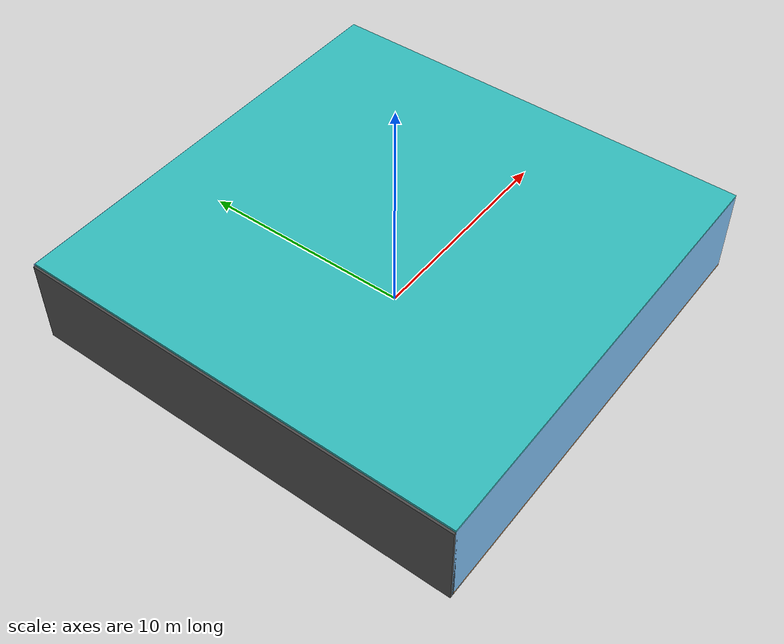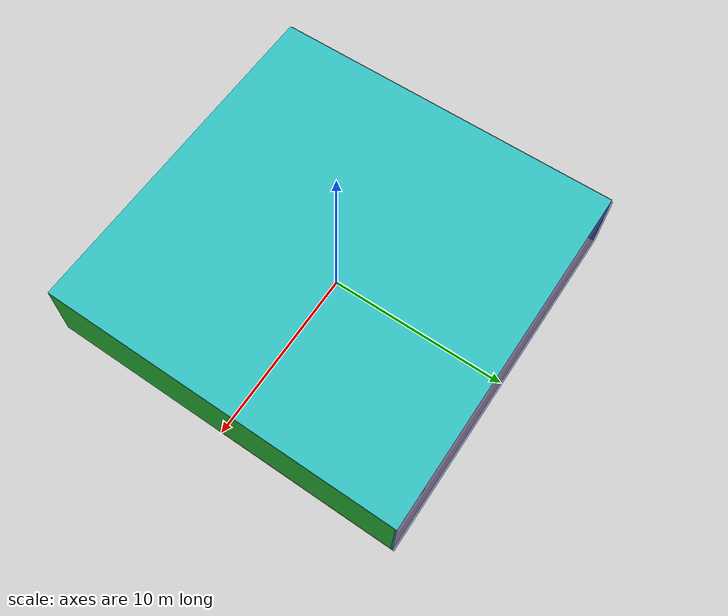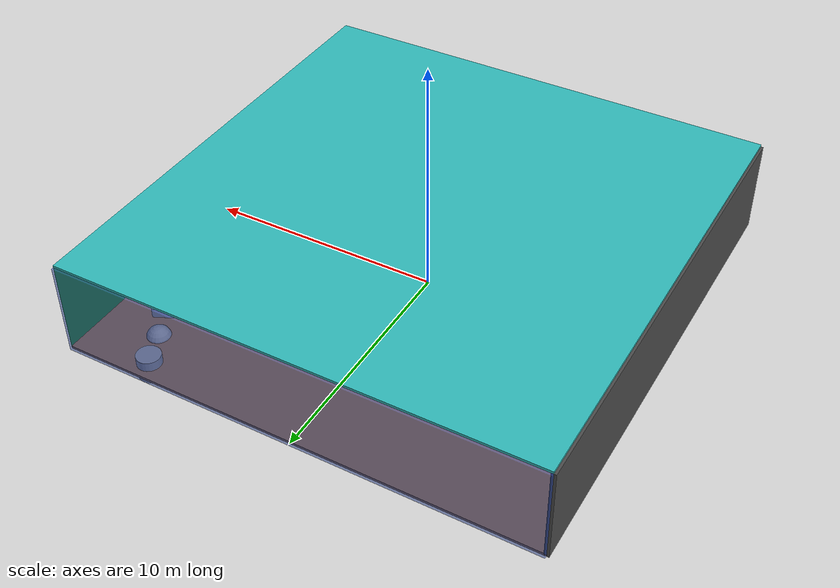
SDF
<sdf version="1.4">
 <world name="default">
  <physics type="ode">
   <max_step_size>0.001</max_step_size>
   <real_time_factor>1</real_time_factor>
   <real_time_update_rate>1000</real_time_update_rate>
   <gravity>0 0 -9.8</gravity>
  </physics>
  <scene><ambient>0.4 0.4 0.4 1</ambient><background>0.7 0.7 0.7 1</background><shadows>1</shadows></scene>
  <model name="Surrounding">
   <static>1</static>
   <link name="Ceiling">
    <collision name="Ceiling_Collision"><geometry><box><size>20 20 0.1</size></box></geometry></collision>
    <visual name="Ceiling_Visual">
     <geometry><box><size>20 20 0.1</size></box></geometry>
     <material>
      <script>
       <uri>file://media/materials/scripts/gazebo.material</uri>
       <name>Gazebo/TurquoiseGlowOutline</name>
      </script>
     </material>
    </visual>
    <pose>0 0 4.05 0 0 0</pose>
   </link>
   <link name="Wall_South">
    <collision name="Wall_South_Collision">
     <geometry><box><size>20 0 4</size></box></geometry>
     <pose>0 0 2 0 -0 0</pose>
    </collision>
    <visual name="Wall_South_Visual">
     <pose>0 0 2 0 -0 0</pose>
     <geometry><box><size>20 0 4</size></box></geometry>
     <material>
      <script><uri>file://media/materials/scripts/gazebo.material</uri><name>Gazebo/SkyBlue</name></script>
     </material>
    </visual>
    <velocity_decay><linear>0</linear><angular>0</angular></velocity_decay>
    <pose>0 -10 0 0 -0 0</pose>
   </link>
   <link name="Wall_East">
    <collision name="Wall_21_Collision">
     <geometry><box><size>20 0 4</size></box></geometry>
     <pose>0 0 2 0 -0 0</pose>
    </collision>
    <visual name="Wall_21_Visual">
     <pose>0 0 2 0 -0 0</pose>
     <geometry><box><size>20 0 4</size></box></geometry>
     <material>
      <script><uri>file://media/materials/scripts/gazebo.material</uri><name>Gazebo/GreenGlow</name></script>
     </material>
    </visual>
    <velocity_decay><linear>0</linear><angular>0</angular></velocity_decay>
    <pose>10 0 0 0 -0 1.5708</pose>
   </link>
   <link name="Wall_North">
    <collision name="Wall_22_Collision">
     <geometry><box><size>20 0.2 4</size></box></geometry>
     <pose>0 0 2 0 -0 0</pose>
    </collision>
    <visual name="Wall_22_Visual">
     <pose>0 0 2 0 -0 0</pose>
     <geometry><box><size>20 0.2 4</size></box></geometry>
     <material>
      <script><uri>file://media/materials/scripts/gazebo.material</uri><name>Gazebo/BlueTransparent</name></script>
     </material>
    </visual>
    <velocity_decay><linear>0</linear><angular>0</angular></velocity_decay>
    <pose>0 10 0 0 -0 0</pose>
   </link>
   <link name="Wall_West">
    <collision name="Wall_23_Collision">
     <geometry><box><size>20 0.2 4</size></box></geometry>
     <pose>0 0 2 0 -0 0</pose>
    </collision>
    <visual name="Wall_23_Visual">
     <pose>0 0 2 0 -0 0</pose>
     <geometry><box><size>20 0.2 4</size></box></geometry>
     <material>
      <script><uri>file://media/materials/scripts/gazebo.material</uri><name>Gazebo/Road</name></script>
     </material>
    </visual>
    <velocity_decay><linear>0</linear><angular>0</angular></velocity_decay>
    <pose>-10 0 0 0 0 -1.5708</pose>
   </link>
   <link name="Ground_link">
    <collision name="collision">
     <pose>0 0 .05 0 -0 0</pose>
     <geometry><box><size>20 20 0.1</size></box></geometry>
    </collision>
    <visual name="visual">
     <pose>0 0 .05 0 -0 0</pose>
     <geometry><box><size>20 20 0.1</size></box></geometry>
     <material>
      <script><uri>file://media/materials/scripts/gazebo.material</uri><name>Gazebo/WoodFloor</name></script>
     </material>
    </visual>
   </link>
   <static>1</static>
  </model>
  <spherical_coordinates>
   <surface_model>EARTH_WGS84</surface_model>
   <latitude_deg>0</latitude_deg>
   <longitude_deg>0</longitude_deg>
   <elevation>0</elevation>
   <heading_deg>0</heading_deg>
  </spherical_coordinates>
  <light name="lightball_0" type="diffuse">
   <diffuse>0.8 0.8 0.8 1</diffuse>
   <specular>0.2 0.2 0.2 1</specular>
   <attenuation>
    <range>100</range>
    <constant>0.7</constant>
    <linear>0.01</linear>
    <quadratic>0.001</quadratic>
   </attenuation>
   <direction>-0.5 0.1 -0.9</direction>
   <pose>-2.09961074019 7.79641925141 1.82401400903 0 0 0</pose>
  </light>
  <light name="lightball_1" type="diffuse">
   <diffuse>0.8 0.8 0.8 1</diffuse>
   <specular>0.2 0.2 0.2 1</specular>
   <attenuation>
    <range>100</range>
    <constant>0.7</constant>
    <linear>0.01</linear>
    <quadratic>0.001</quadratic>
   </attenuation>
   <direction>-0.5 0.1 -0.9</direction>
   <pose>7.98941001513 2.14184606265 0.976542093238 0 0 0</pose>
  </light>
  <light name="lightball_2" type="diffuse">
   <diffuse>0.8 0.8 0.8 1</diffuse>
   <specular>0.2 0.2 0.2 1</specular>
   <attenuation>
    <range>100</range>
    <constant>0.7</constant>
    <linear>0.01</linear>
    <quadratic>0.001</quadratic>
   </attenuation>
   <direction>-0.5 0.1 -0.9</direction>
   <pose>6.10281777358 -5.31764838406 0.658730829965 0 0 0</pose>
  </light>
  <light name="lightball_3" type="diffuse">
   <diffuse>0.8 0.8 0.8 1</diffuse>
   <specular>0.2 0.2 0.2 1</specular>
   <attenuation>
    <range>100</range>
    <constant>0.7</constant>
    <linear>0.01</linear>
    <quadratic>0.001</quadratic>
   </attenuation>
   <direction>-0.5 0.1 -0.9</direction>
   <pose>-0.588634932116 5.1028981726 0.749484724487 0 0 0</pose>
  </light>
  <light name="lightball_4" type="diffuse">
   <diffuse>0.8 0.8 0.8 1</diffuse>
   <specular>0.2 0.2 0.2 1</specular>
   <attenuation>
    <range>100</range>
    <constant>0.7</constant>
    <linear>0.01</linear>
    <quadratic>0.001</quadratic>
   </attenuation>
   <direction>-0.5 0.1 -0.9</direction>
   <pose>-9.96332551336 -8.77471208773 3.14232587292 0 0 0</pose>
  </light>
  <light name="lightball_5" type="diffuse">
   <diffuse>0.8 0.8 0.8 1</diffuse>
   <specular>0.2 0.2 0.2 1</specular>
   <attenuation>
    <range>100</range>
    <constant>0.7</constant>
    <linear>0.01</linear>
    <quadratic>0.001</quadratic>
   </attenuation>
   <direction>-0.5 0.1 -0.9</direction>
   <pose>0.412014635029 4.77269211717 3.03208511141 0 0 0</pose>
  </light>
  <light name="lightball_6" type="diffuse">
   <diffuse>0.8 0.8 0.8 1</diffuse>
   <specular>0.2 0.2 0.2 1</specular>
   <attenuation>
    <range>100</range>
    <constant>0.7</constant>
    <linear>0.01</linear>
    <quadratic>0.001</quadratic>
   </attenuation>
   <direction>-0.5 0.1 -0.9</direction>
   <pose>1.30393304465 0.841540625404 3.40086906011 0 0 0</pose>
  </light>
  <light name="lightball_7" type="diffuse">
   <diffuse>0.8 0.8 0.8 1</diffuse>
   <specular>0.2 0.2 0.2 1</specular>
   <attenuation>
    <range>100</range>
    <constant>0.7</constant>
    <linear>0.01</linear>
    <quadratic>0.001</quadratic>
   </attenuation>
   <direction>-0.5 0.1 -0.9</direction>
   <pose>-5.93090448635 -8.49263501639 3.39910667395 0 0 0</pose>
  </light>
  <light name="lightball_8" type="diffuse">
   <diffuse>0.8 0.8 0.8 1</diffuse>
   <specular>0.2 0.2 0.2 1</specular>
   <attenuation>
    <range>100</range>
    <constant>0.7</constant>
    <linear>0.01</linear>
    <quadratic>0.001</quadratic>
   </attenuation>
   <direction>-0.5 0.1 -0.9</direction>
   <pose>-7.04336111889 9.64432714694 1.14585680898 0 0 0</pose>
  </light>
  <light name="lightball_9" type="diffuse">
   <diffuse>0.8 0.8 0.8 1</diffuse>
   <specular>0.2 0.2 0.2 1</specular>
   <attenuation>
    <range>100</range>
    <constant>0.7</constant>
    <linear>0.01</linear>
    <quadratic>0.001</quadratic>
   </attenuation>
   <direction>-0.5 0.1 -0.9</direction>
   <pose>1.62735482184 -9.07439599172 3.82813680249 0 0 0</pose>
  </light>
  <light name="lightball_10" type="diffuse">
   <diffuse>0.8 0.8 0.8 1</diffuse>
   <specular>0.2 0.2 0.2 1</specular>
   <attenuation>
    <range>100</range>
    <constant>0.7</constant>
    <linear>0.01</linear>
    <quadratic>0.001</quadratic>
   </attenuation>
   <direction>-0.5 0.1 -0.9</direction>
   <pose>-6.88441645003 -6.79654331102 1.65683519339 0 0 0</pose>
  </light>
  <include>
   <uri>model://textured_shapes</uri>
   <pose>1.98819265261 -6.30935457016 0 0 0 1.54988378995</pose>
  </include>
  <include><uri>model://cabinet</uri><pose>1.51493475674 -5.39788320468 0 0 0 1.44833634325</pose></include>
  <include>
   <uri>model://construction_cone</uri>
   <pose>8.12919475707 2.05709824455 0 0 0 0.86347040215</pose>
  </include>
  <include>
   <uri>model://textured_shapes</uri>
   <pose>7.47086895499 7.8842745314 0 0 0 0.436046440436</pose>
  </include>
 </world>
</sdf>

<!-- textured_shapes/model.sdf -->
<sdf version="1.6">
  <model name="textured_shapes">
    <pose>0 0 0.5 0 0 0</pose>
    <link name="box">
      <pose>0 -1.5 0 0 0 0</pose>
      <collision name="collision">
        <geometry>
          <box>
            <size>1 1 1</size>
          </box>
        </geometry>
      </collision>
      <visual name="visual">
        <geometry>
          <box>
            <size>1 1 1</size>
          </box>
        </geometry>
        <material>
          <script>
            <uri>model://../model_source/models/textured_shapes/materials/scripts</uri>
            <uri>model://../model_source/models/textured_shapes/materials/textures</uri>
            <name>TexturedShape/Squares</name>
          </script>
        </material>
      </visual>
    </link>
    <link name="sphere">
      <collision name="collision">
        <geometry>
          <sphere>
            <radius>0.5</radius>
          </sphere>
        </geometry>
      </collision>
      <visual name="visual">
        <geometry>
          <sphere>
            <radius>0.5</radius>
          </sphere>
        </geometry>
        <material>
          <script>
            <uri>model://../model_source/models/textured_shapes/materials/scripts</uri>
            <uri>model://../model_source/models/textured_shapes/materials/textures</uri>
            <name>TexturedShape/Squares</name>
          </script>
        </material>
      </visual>
    </link>
    <link name="cylinder">
      <pose>0 1.5 0 0 0 0</pose>
      <collision name="collision">
        <geometry>
          <cylinder>
            <radius>0.5</radius>
            <length>1</length>
          </cylinder>
        </geometry>
      </collision>
      <visual name="visual">
        <geometry>
          <cylinder>
            <radius>0.5</radius>
            <length>1</length>
          </cylinder>
        </geometry>
        <material>
          <script>
            <uri>model://../model_source/models/textured_shapes/materials/scripts</uri>
            <uri>model://../model_source/models/textured_shapes/materials/textures</uri>
            <name>TexturedShape/Squares</name>
          </script>
        </material>
      </visual>
    </link>
  </model>
</sdf>

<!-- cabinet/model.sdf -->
<sdf version="1.5">
  <model name="cabinet">
    <static>true</static>
    <link name="cabinet_bottom_plate">
      <inertial>
        <pose>0 0 -1 0 0 0</pose>
        <inertia>
          <ixx>2.050000</ixx>
          <ixy>0</ixy>
          <ixz>0</ixz>
          <iyy>2.050000</iyy>
          <iyz>0</iyz>
          <izz>2.050000</izz>
        </inertia>
        <mass>25.000000</mass>
      </inertial>
      <collision name="cabinet_bottom_plate_geom">
        <pose>0 0 0.010000 0 0 0</pose>
        <geometry>
          <box>
            <size>0.450000 0.450000 0.020000</size>
          </box>
        </geometry>
      </collision>
      <visual name="cabinet_bottom_plate_geom_visual">
        <pose>0 0 0.010000 0 0 0</pose>
        <geometry>
          <box>
            <size>0.450000 0.450000 0.020000</size>
          </box>
        </geometry>
        <material>
          <script>
            <uri>model://media/materials/scripts/gazebo.material</uri>
            <name>Gazebo/Wood</name>
          </script>
        </material>
      </visual>
      <collision name="cabinet_bottom_plate_geom_cabinet_back_plate">
        <pose>0.235000 0 0.510000 0 0 0</pose>
        <geometry>
          <box>
            <size>0.020000 0.450000 1.020000</size>
          </box>
        </geometry>
      </collision>
      <visual name="cabinet_bottom_plate_geom_cabinet_back_plate_visual">
        <pose>0.235000 0 0.510000 0 0 0</pose>
        <geometry>
          <box>
            <size>0.020000 0.450000 1.020000</size>
          </box>
        </geometry>
        <material>
          <script>
            <uri>model://media/materials/scripts/gazebo.material</uri>
            <name>Gazebo/Wood</name>
          </script>
        </material>
      </visual>
      <collision name="cabinet_bottom_plate_geom_cabinet_left_plate">
        <pose>0 0.235000 0.510000 0 0 0</pose>
        <geometry>
          <box>
            <size>0.450000 0.020000 1.020000</size>
          </box>
        </geometry>
      </collision>
      <visual name="cabinet_bottom_plate_geom_cabinet_left_plate_visual">
        <pose>0 0.235000 0.510000 0 0 0</pose>
        <geometry>
          <box>
            <size>0.450000 0.020000 1.020000</size>
          </box>
        </geometry>
        <material>
          <script>
            <uri>model://media/materials/scripts/gazebo.material</uri>
            <name>Gazebo/Wood</name>
          </script>
        </material>
      </visual>
      <collision name="cabinet_bottom_plate_geom_cabinet_middle_plate">
        <pose>0 0 0.510000 0 0 0</pose>
        <geometry>
          <box>
            <size>0.450000 0.450000 0.020000</size>
          </box>
        </geometry>
      </collision>
      <visual name="cabinet_bottom_plate_geom_cabinet_middle_plate_visual">
        <pose>0 0 0.510000 0 0 0</pose>
        <geometry>
          <box>
            <size>0.450000 0.450000 0.020000</size>
          </box>
        </geometry>
        <material>
          <script>
            <uri>model://media/materials/scripts/gazebo.material</uri>
            <name>Gazebo/Wood</name>
          </script>
        </material>
      </visual>
      <collision name="cabinet_bottom_plate_geom_cabinet_right_plate">
        <pose>0 -0.235000 0.510000 0 0 0</pose>
        <geometry>
          <box>
            <size>0.450000 0.020000 1.020000</size>
          </box>
        </geometry>
      </collision>
      <visual name="cabinet_bottom_plate_geom_cabinet_right_plate_visual">
        <pose>0 -0.235000 0.510000 0 0 0</pose>
        <geometry>
          <box>
            <size>0.450000 0.020000 1.020000</size>
          </box>
        </geometry>
        <material>
          <script>
            <uri>model://media/materials/scripts/gazebo.material</uri>
            <name>Gazebo/Wood</name>
          </script>
        </material>
      </visual>
      <collision name="cabinet_bottom_plate_geom_cabinet_top_plate">
        <pose>0 0 1.010000 0 0 0</pose>
        <geometry>
          <box>
            <size>0.450000 0.450000 0.020000</size>
          </box>
        </geometry>
      </collision>
      <visual name="cabinet_bottom_plate_geom_cabinet_top_plate_visual">
        <pose>0 0 1.010000 0 0 0</pose>
        <geometry>
          <box>
            <size>0.450000 0.450000 0.020000</size>
          </box>
        </geometry>
        <material>
          <script>
            <uri>model://media/materials/scripts/gazebo.material</uri>
            <name>Gazebo/Wood</name>
          </script>
        </material>
      </visual>
    </link>
  </model>
</sdf>

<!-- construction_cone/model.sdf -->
<sdf version="1.5">
  <model name="Construction Cone">
    <link name="link">
      <collision name="collision">
        <geometry>
          <mesh>
            <scale>10 10 10</scale>
            <uri>file://isr-testbed/construction_cone/meshes/construction_cone.dae</uri>
          </mesh>
        </geometry>
      </collision>
      <visual name="visual">
        <geometry>
          <mesh>
            <scale>10 10 10</scale>
            <uri>file://isr-testbed/construction_cone/meshes/construction_cone.dae</uri>
          </mesh>
        </geometry>
      </visual>
    </link>
  </model>
</sdf>
